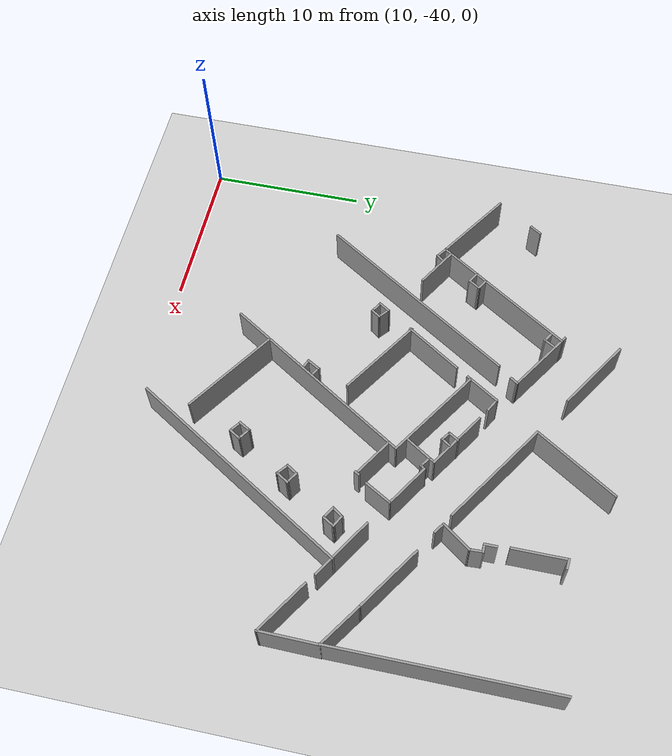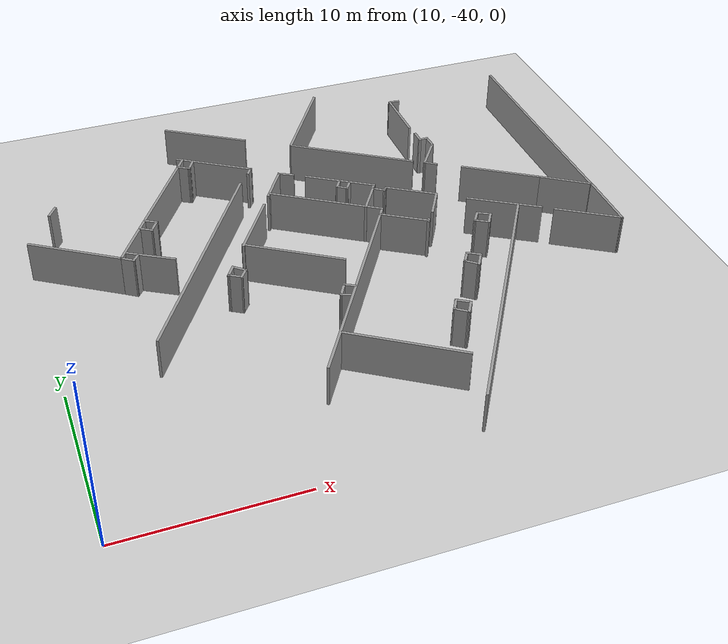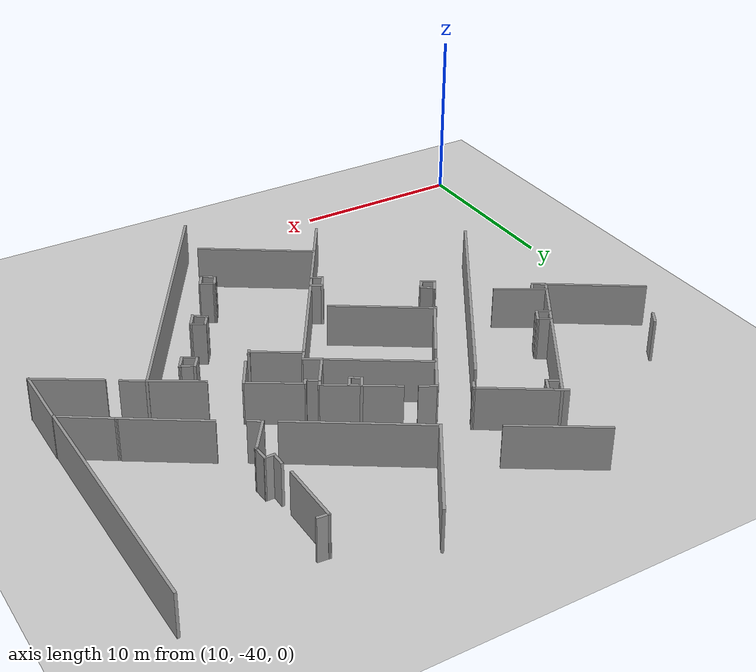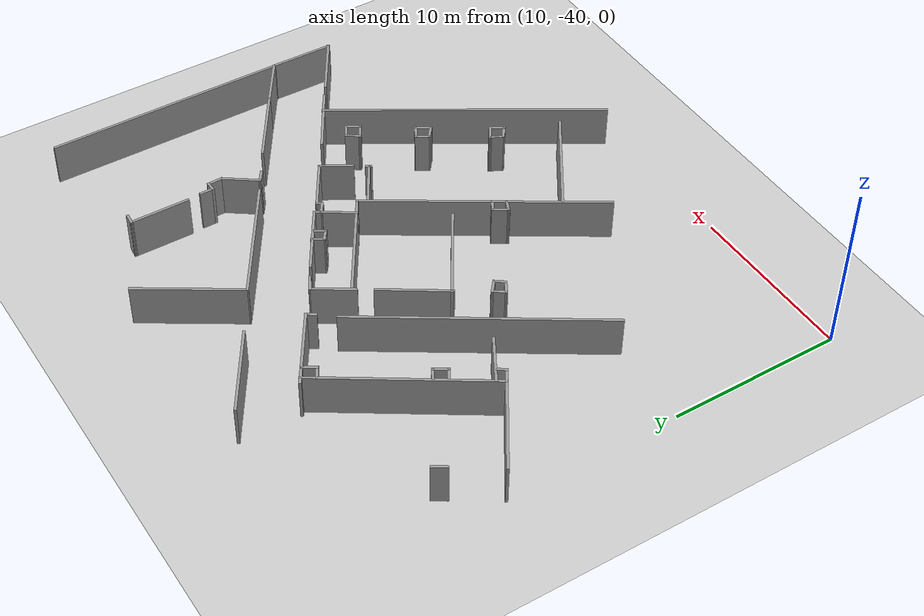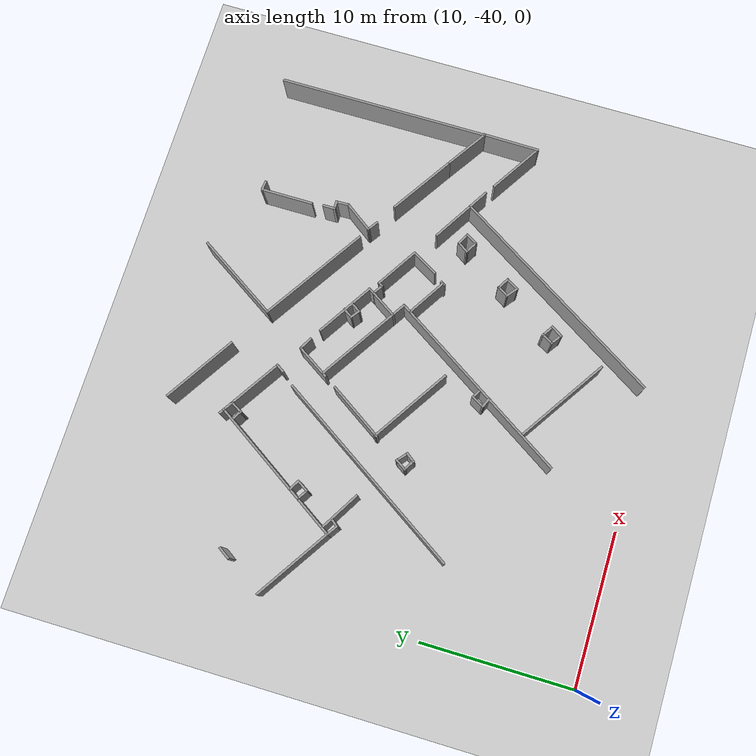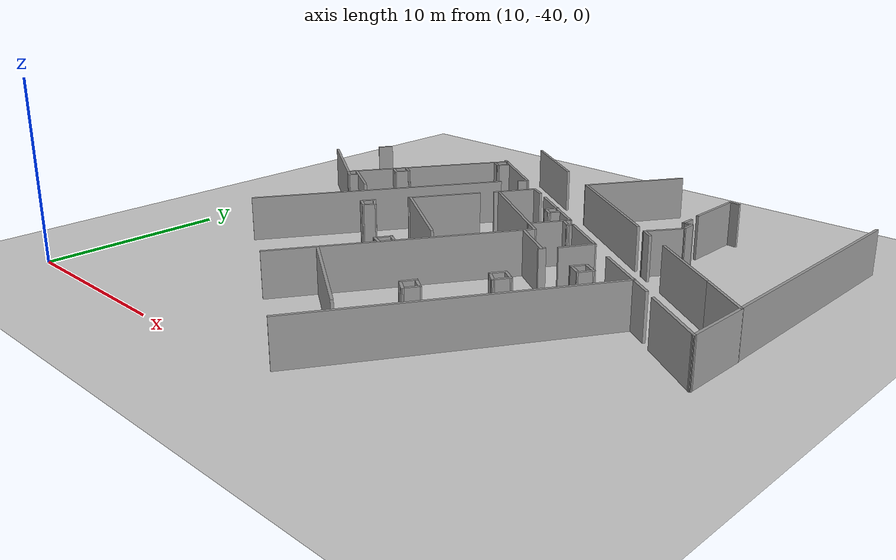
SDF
<sdf version="1.7">
 <world name="default">
  <model name="ground_plane">
   <static>1</static>
   <link name="link">
    <collision name="collision">
     <geometry><plane><normal>0 0 1</normal><size>100 100</size></plane></geometry>
     <surface><friction><ode><mu>100</mu><mu2>50</mu2></ode></friction></surface>
    </collision>
    <visual name="visual">
     <cast_shadows>0</cast_shadows>
     <geometry><plane><normal>0 0 1</normal><size>100 100</size></plane></geometry>
     <material>
      <script><uri>file://media/materials/scripts/gazebo.material</uri><name>Gazebo/Grey</name></script>
     </material>
    </visual>
   </link>
  </model>
  <model name="HopperFloorGround_Full">
   <pose>5.96828 -4.00427 0 0 -0 0</pose>
   <link name="Wall_1">
    <collision name="Wall_1_Collision">
     <geometry><box><size>16.3063 0.15 2.5</size></box></geometry>
     <pose>0 0 1.25 0 -0 0</pose>
    </collision>
    <visual name="Wall_1_Visual">
     <pose>0 0 1.25 0 -0 0</pose>
     <geometry><box><size>16.3063 0.15 2.5</size></box></geometry>
     <material>
      <script><uri>file://media/materials/scripts/gazebo.material</uri><name>Gazebo/Grey</name></script>
      <ambient>1 1 1 1</ambient>
     </material>
     <meta><layer>0</layer></meta>
    </visual>
    <pose>27.2284 -28.2428 0 0 -0 1.02013</pose>
   </link>
   <link name="Wall_10">
    <collision name="Wall_10_Collision">
     <geometry><box><size>0.518953 0.15 2.5</size></box></geometry>
     <pose>0 0 1.25 0 -0 0</pose>
    </collision>
    <visual name="Wall_10_Visual">
     <pose>0 0 1.25 0 -0 0</pose>
     <geometry><box><size>0.518953 0.15 2.5</size></box></geometry>
     <material>
      <script><uri>file://media/materials/scripts/gazebo.material</uri><name>Gazebo/Grey</name></script>
      <ambient>1 1 1 1</ambient>
     </material>
     <meta><layer>0</layer></meta>
    </visual>
    <pose>24.1583 -16.8971 0 0 -0 1.02225</pose>
   </link>
   <link name="Wall_12">
    <collision name="Wall_12_Collision">
     <geometry><box><size>4.26067 0.15 2.5</size></box></geometry>
     <pose>0 0 1.25 0 -0 0</pose>
    </collision>
    <visual name="Wall_12_Visual">
     <pose>0 0 1.25 0 -0 0</pose>
     <geometry><box><size>4.26067 0.15 2.5</size></box></geometry>
     <material>
      <script><uri>file://media/materials/scripts/gazebo.material</uri><name>Gazebo/Grey</name></script>
      <ambient>1 1 1 1</ambient>
     </material>
     <meta><layer>0</layer></meta>
    </visual>
    <pose>22.5135 -15.6473 0 0 -0 2.58124</pose>
   </link>
   <link name="Wall_14">
    <collision name="Wall_14_Collision">
     <geometry><box><size>1.0029 0.15 2.5</size></box></geometry>
     <pose>0 0 1.25 0 -0 0</pose>
    </collision>
    <visual name="Wall_14_Visual">
     <pose>0 0 1.25 0 -0 0</pose>
     <geometry><box><size>1.0029 0.15 2.5</size></box></geometry>
     <material>
      <script><uri>file://media/materials/scripts/gazebo.material</uri><name>Gazebo/Grey</name></script>
      <ambient>1 1 1 1</ambient>
     </material>
     <meta><layer>0</layer></meta>
    </visual>
    <pose>19.6794 -13.9165 0 0 -0 2.65043</pose>
   </link>
   <link name="Wall_15">
    <collision name="Wall_15_Collision">
     <geometry><box><size>2.53238 0.15 2.5</size></box></geometry>
     <pose>0 0 1.25 0 -0 0</pose>
    </collision>
    <visual name="Wall_15_Visual">
     <pose>0 0 1.25 0 -0 0</pose>
     <geometry><box><size>2.53238 0.15 2.5</size></box></geometry>
     <material>
      <script><uri>file://media/materials/scripts/gazebo.material</uri><name>Gazebo/Grey</name></script>
      <ambient>1 1 1 1</ambient>
     </material>
     <meta><layer>0</layer></meta>
    </visual>
    <pose>18.665 -14.7211 0 0 -0 -2.1364</pose>
   </link>
   <link name="Wall_17">
    <collision name="Wall_17_Collision">
     <geometry><box><size>4.18126 0.15 2.5</size></box></geometry>
     <pose>0 0 1.25 0 -0 0</pose>
    </collision>
    <visual name="Wall_17_Visual">
     <pose>0 0 1.25 0 -0 0</pose>
     <geometry><box><size>4.18126 0.15 2.5</size></box></geometry>
     <material>
      <script><uri>file://media/materials/scripts/gazebo.material</uri><name>Gazebo/Grey</name></script>
      <ambient>1 1 1 1</ambient>
     </material>
     <meta><layer>0</layer></meta>
    </visual>
    <pose>16.4 -18.2366 0 0 -0 -2.14917</pose>
   </link>
   <link name="Wall_18">
    <collision name="Wall_18_Collision">
     <geometry><box><size>5.9215 0.15 2.5</size></box></geometry>
     <pose>0 0 1.25 0 -0 0</pose>
    </collision>
    <visual name="Wall_18_Visual">
     <pose>0 0 1.25 0 -0 0</pose>
     <geometry><box><size>5.9215 0.15 2.5</size></box></geometry>
     <material>
      <script><uri>file://media/materials/scripts/gazebo.material</uri><name>Gazebo/Grey</name></script>
      <ambient>1 1 1 1</ambient>
     </material>
     <meta><layer>0</layer></meta>
    </visual>
    <pose>17.7293 -21.3954 0 0 -0 -0.568971</pose>
   </link>
   <link name="Wall_20">
    <collision name="Wall_20_Collision">
     <geometry><box><size>13.9697 0.15 2.5</size></box></geometry>
     <pose>0 0 1.25 0 -0 0</pose>
    </collision>
    <visual name="Wall_20_Visual">
     <pose>0 0 1.25 0 -0 0</pose>
     <geometry><box><size>13.9697 0.15 2.5</size></box></geometry>
     <material>
      <script><uri>file://media/materials/scripts/gazebo.material</uri><name>Gazebo/Grey</name></script>
      <ambient>1 1 1 1</ambient>
     </material>
     <meta><layer>0</layer></meta>
    </visual>
    <pose>20.145 -25.001 0 0 -0 1.0068</pose>
   </link>
   <link name="Wall_206">
    <collision name="Wall_206_Collision">
     <geometry><box><size>0.911033 0.15 2.5</size></box></geometry>
     <pose>0 0 1.25 0 -0 0</pose>
    </collision>
    <visual name="Wall_206_Visual">
     <pose>0 0 1.25 0 -0 0</pose>
     <geometry><box><size>0.911033 0.15 2.5</size></box></geometry>
     <material>
      <script><uri>file://media/materials/scripts/gazebo.material</uri><name>Gazebo/Grey</name></script>
      <ambient>1 1 1 1</ambient>
     </material>
     <meta><layer>0</layer></meta>
    </visual>
    <pose>5.80893 -13.1592 0 0 -0 -2.1588</pose>
   </link>
   <link name="Wall_21">
    <collision name="Wall_21_Collision">
     <geometry><box><size>6.82507 0.15 2.5</size></box></geometry>
     <pose>0 0 1.25 0 -0 0</pose>
    </collision>
    <visual name="Wall_21_Visual">
     <pose>0 0 1.25 0 -0 0</pose>
     <geometry><box><size>6.82507 0.15 2.5</size></box></geometry>
     <material>
      <script><uri>file://media/materials/scripts/gazebo.material</uri><name>Gazebo/Grey</name></script>
      <ambient>1 1 1 1</ambient>
     </material>
     <meta><layer>0</layer></meta>
    </visual>
    <pose>21.0245 -17.3672 0 0 -0 2.57405</pose>
   </link>
   <link name="Wall_213">
    <collision name="Wall_213_Collision">
     <geometry><box><size>5.6192 0.15 2.5</size></box></geometry>
     <pose>0 0 1.25 0 -0 0</pose>
    </collision>
    <visual name="Wall_213_Visual">
     <pose>0 0 1.25 0 -0 0</pose>
     <geometry><box><size>5.6192 0.15 2.5</size></box></geometry>
     <material>
      <script><uri>file://media/materials/scripts/gazebo.material</uri><name>Gazebo/Grey</name></script>
      <ambient>1 1 1 1</ambient>
     </material>
     <meta><layer>0</layer></meta>
    </visual>
    <pose>6.363 -17.3367 0 0 -0 -0.574623</pose>
   </link>
   <link name="Wall_214">
    <collision name="Wall_214_Collision">
     <geometry><box><size>10.3075 0.15 2.5</size></box></geometry>
     <pose>0 0 1.25 0 -0 0</pose>
    </collision>
    <visual name="Wall_214_Visual">
     <pose>0 0 1.25 0 -0 0</pose>
     <geometry><box><size>10.3075 0.15 2.5</size></box></geometry>
     <material>
      <script><uri>file://media/materials/scripts/gazebo.material</uri><name>Gazebo/Grey</name></script>
      <ambient>1 1 1 1</ambient>
     </material>
     <meta><layer>0</layer></meta>
    </visual>
    <pose>11.4287 -14.5663 0 0 -0 0.99384</pose>
   </link>
   <link name="Wall_217">
    <collision name="Wall_217_Collision">
     <geometry><box><size>4.78533 0.15 2.5</size></box></geometry>
     <pose>0 0 1.25 0 -0 0</pose>
    </collision>
    <visual name="Wall_217_Visual">
     <pose>0 0 1.25 0 -0 0</pose>
     <geometry><box><size>4.78533 0.15 2.5</size></box></geometry>
     <material>
      <script><uri>file://media/materials/scripts/gazebo.material</uri><name>Gazebo/Grey</name></script>
      <ambient>1 1 1 1</ambient>
     </material>
     <meta><layer>0</layer></meta>
    </visual>
    <pose>15.8877 -11.4003 0 0 -0 -0.569058</pose>
   </link>
   <link name="Wall_219">
    <collision name="Wall_219_Collision">
     <geometry><box><size>0.657355 0.15 2.5</size></box></geometry>
     <pose>0 0 1.25 0 -0 0</pose>
    </collision>
    <visual name="Wall_219_Visual">
     <pose>0 0 1.25 0 -0 0</pose>
     <geometry><box><size>0.657355 0.15 2.5</size></box></geometry>
     <material>
      <script><uri>file://media/materials/scripts/gazebo.material</uri><name>Gazebo/Grey</name></script>
      <ambient>1 1 1 1</ambient>
     </material>
     <meta><layer>0</layer></meta>
    </visual>
    <pose>17.6994 -12.8602 0 0 -0 -2.1588</pose>
   </link>
   <link name="Wall_221">
    <collision name="Wall_221_Collision">
     <geometry><box><size>0.922332 0.15 2.5</size></box></geometry>
     <pose>0 0 1.25 0 -0 0</pose>
    </collision>
    <visual name="Wall_221_Visual">
     <pose>0 0 1.25 0 -0 0</pose>
     <geometry><box><size>0.922332 0.15 2.5</size></box></geometry>
     <material>
      <script><uri>file://media/materials/scripts/gazebo.material</uri><name>Gazebo/Grey</name></script>
      <ambient>1 1 1 1</ambient>
     </material>
     <meta><layer>0</layer></meta>
    </visual>
    <pose>14.5509 -11.0309 0 0 -0 -2.09559</pose>
   </link>
   <link name="Wall_222">
    <collision name="Wall_222_Collision">
     <geometry><box><size>0.843834 0.15 2.5</size></box></geometry>
     <pose>0 0 1.25 0 -0 0</pose>
    </collision>
    <visual name="Wall_222_Visual">
     <pose>0 0 1.25 0 -0 0</pose>
     <geometry><box><size>0.843834 0.15 2.5</size></box></geometry>
     <material>
      <script><uri>file://media/materials/scripts/gazebo.material</uri><name>Gazebo/Grey</name></script>
      <ambient>1 1 1 1</ambient>
     </material>
     <meta><layer>0</layer></meta>
    </visual>
    <pose>14.0584 -11.1892 0 0 -0 2.60987</pose>
   </link>
   <link name="Wall_224">
    <collision name="Wall_224_Collision">
     <geometry><box><size>0.804599 0.15 2.5</size></box></geometry>
     <pose>0 0 1.25 0 -0 0</pose>
    </collision>
    <visual name="Wall_224_Visual">
     <pose>0 0 1.25 0 -0 0</pose>
     <geometry><box><size>0.804599 0.15 2.5</size></box></geometry>
     <material>
      <script><uri>file://media/materials/scripts/gazebo.material</uri><name>Gazebo/Grey</name></script>
      <ambient>1 1 1 1</ambient>
     </material>
     <meta><layer>0</layer></meta>
    </visual>
    <pose>10.9626 -15.9823 0 0 -0 -0.535811</pose>
   </link>
   <link name="Wall_225">
    <collision name="Wall_225_Collision">
     <geometry><box><size>0.940544 0.15 2.5</size></box></geometry>
     <pose>0 0 1.25 0 -0 0</pose>
    </collision>
    <visual name="Wall_225_Visual">
     <pose>0 0 1.25 0 -0 0</pose>
     <geometry><box><size>0.940544 0.15 2.5</size></box></geometry>
     <material>
      <script><uri>file://media/materials/scripts/gazebo.material</uri><name>Gazebo/Grey</name></script>
      <ambient>1 1 1 1</ambient>
     </material>
     <meta><layer>0</layer></meta>
    </visual>
    <pose>11.033 -16.4836 0 0 -0 -2.13411</pose>
   </link>
   <link name="Wall_226">
    <collision name="Wall_226_Collision">
     <geometry><box><size>0.828731 0.15 2.5</size></box></geometry>
     <pose>0 0 1.25 0 -0 0</pose>
    </collision>
    <visual name="Wall_226_Visual">
     <pose>0 0 1.25 0 -0 0</pose>
     <geometry><box><size>0.828731 0.15 2.5</size></box></geometry>
     <material>
      <script><uri>file://media/materials/scripts/gazebo.material</uri><name>Gazebo/Grey</name></script>
      <ambient>1 1 1 1</ambient>
     </material>
     <meta><layer>0</layer></meta>
    </visual>
    <pose>10.5317 -16.6419 0 0 -0 2.59673</pose>
   </link>
   <link name="Wall_228">
    <collision name="Wall_228_Collision">
     <geometry><box><size>0.896462 0.15 2.5</size></box></geometry>
     <pose>0 0 1.25 0 -0 0</pose>
    </collision>
    <visual name="Wall_228_Visual">
     <pose>0 0 1.25 0 -0 0</pose>
     <geometry><box><size>0.896462 0.15 2.5</size></box></geometry>
     <material>
      <script><uri>file://media/materials/scripts/gazebo.material</uri><name>Gazebo/Grey</name></script>
      <ambient>1 1 1 1</ambient>
     </material>
     <meta><layer>0</layer></meta>
    </visual>
    <pose>8.96623 -19.034 0 0 -0 -0.601074</pose>
   </link>
   <link name="Wall_229">
    <collision name="Wall_229_Collision">
     <geometry><box><size>0.614373 0.15 2.5</size></box></geometry>
     <pose>0 0 1.25 0 -0 0</pose>
    </collision>
    <visual name="Wall_229_Visual">
     <pose>0 0 1.25 0 -0 0</pose>
     <geometry><box><size>0.614373 0.15 2.5</size></box></geometry>
     <material>
      <script><uri>file://media/materials/scripts/gazebo.material</uri><name>Gazebo/Grey</name></script>
      <ambient>1 1 1 1</ambient>
     </material>
     <meta><layer>0</layer></meta>
    </visual>
    <pose>9.41476 -19.0604 0 0 -0 0.91972</pose>
   </link>
   <link name="Wall_23">
    <collision name="Wall_23_Collision">
     <geometry><box><size>0.813752 0.15 2.5</size></box></geometry>
     <pose>0 0 1.25 0 -0 0</pose>
    </collision>
    <visual name="Wall_23_Visual">
     <pose>0 0 1.25 0 -0 0</pose>
     <geometry><box><size>0.813752 0.15 2.5</size></box></geometry>
     <material>
      <script><uri>file://media/materials/scripts/gazebo.material</uri><name>Gazebo/Grey</name></script>
      <ambient>1 1 1 1</ambient>
     </material>
     <meta><layer>0</layer></meta>
    </visual>
    <pose>22.3261 -15.8897 0 0 -0 -2.1294</pose>
   </link>
   <link name="Wall_231">
    <collision name="Wall_231_Collision">
     <geometry><box><size>2.98866 0.15 2.5</size></box></geometry>
     <pose>0 0 1.25 0 -0 0</pose>
    </collision>
    <visual name="Wall_231_Visual">
     <pose>0 0 1.25 0 -0 0</pose>
     <geometry><box><size>2.98866 0.15 2.5</size></box></geometry>
     <material>
      <script><uri>file://media/materials/scripts/gazebo.material</uri><name>Gazebo/Grey</name></script>
      <ambient>1 1 1 1</ambient>
     </material>
     <meta><layer>0</layer></meta>
    </visual>
    <pose>10.1799 -19.122 0 0 -0 -0.532981</pose>
   </link>
   <link name="Wall_233">
    <collision name="Wall_233_Collision">
     <geometry><box><size>14.5973 0.15 2.5</size></box></geometry>
     <pose>0 0 1.25 0 -0 0</pose>
    </collision>
    <visual name="Wall_233_Visual">
     <pose>0 0 1.25 0 -0 0</pose>
     <geometry><box><size>14.5973 0.15 2.5</size></box></geometry>
     <material>
      <script><uri>file://media/materials/scripts/gazebo.material</uri><name>Gazebo/Grey</name></script>
      <ambient>1 1 1 1</ambient>
     </material>
     <meta><layer>0</layer></meta>
    </visual>
    <pose>12.9141 -20.0381 0 0 -0 0.999331</pose>
   </link>
   <link name="Wall_235">
    <collision name="Wall_235_Collision">
     <geometry><box><size>0.883834 0.15 2.5</size></box></geometry>
     <pose>0 0 1.25 0 -0 0</pose>
    </collision>
    <visual name="Wall_235_Visual">
     <pose>0 0 1.25 0 -0 0</pose>
     <geometry><box><size>0.883834 0.15 2.5</size></box></geometry>
     <material>
      <script><uri>file://media/materials/scripts/gazebo.material</uri><name>Gazebo/Grey</name></script>
      <ambient>1 1 1 1</ambient>
     </material>
     <meta><layer>0</layer></meta>
    </visual>
    <pose>14.0063 -21.8993 0 0 -0 -2.14717</pose>
   </link>
   <link name="Wall_236">
    <collision name="Wall_236_Collision">
     <geometry><box><size>0.867532 0.15 2.5</size></box></geometry>
     <pose>0 0 1.25 0 -0 0</pose>
    </collision>
    <visual name="Wall_236_Visual">
     <pose>0 0 1.25 0 -0 0</pose>
     <geometry><box><size>0.867532 0.15 2.5</size></box></geometry>
     <material>
      <script><uri>file://media/materials/scripts/gazebo.material</uri><name>Gazebo/Grey</name></script>
      <ambient>1 1 1 1</ambient>
     </material>
     <meta><layer>0</layer></meta>
    </visual>
    <pose>14.1139 -22.3915 0 0 -0 -0.54042</pose>
   </link>
   <link name="Wall_237">
    <collision name="Wall_237_Collision">
     <geometry><box><size>0.765279 0.15 2.5</size></box></geometry>
     <pose>0 0 1.25 0 -0 0</pose>
    </collision>
    <visual name="Wall_237_Visual">
     <pose>0 0 1.25 0 -0 0</pose>
     <geometry><box><size>0.765279 0.15 2.5</size></box></geometry>
     <material>
      <script><uri>file://media/materials/scripts/gazebo.material</uri><name>Gazebo/Grey</name></script>
      <ambient>1 1 1 1</ambient>
     </material>
     <meta><layer>0</layer></meta>
    </visual>
    <pose>14.6062 -22.33 0 0 -0 0.927295</pose>
   </link>
   <link name="Wall_238">
    <collision name="Wall_238_Collision">
     <geometry><box><size>0.91416 0.15 2.5</size></box></geometry>
     <pose>0 0 1.25 0 -0 0</pose>
    </collision>
    <visual name="Wall_238_Visual">
     <pose>0 0 1.25 0 -0 0</pose>
     <geometry><box><size>0.91416 0.15 2.5</size></box></geometry>
     <material>
      <script><uri>file://media/materials/scripts/gazebo.material</uri><name>Gazebo/Grey</name></script>
      <ambient>1 1 1 1</ambient>
     </material>
     <meta><layer>0</layer></meta>
    </visual>
    <pose>14.4985 -21.8377 0 0 -0 2.4417</pose>
   </link>
   <link name="Wall_24">
    <collision name="Wall_24_Collision">
     <geometry><box><size>0.755238 0.15 2.5</size></box></geometry>
     <pose>0 0 1.25 0 -0 0</pose>
    </collision>
    <visual name="Wall_24_Visual">
     <pose>0 0 1.25 0 -0 0</pose>
     <geometry><box><size>0.755238 0.15 2.5</size></box></geometry>
     <material>
      <script><uri>file://media/materials/scripts/gazebo.material</uri><name>Gazebo/Grey</name></script>
      <ambient>1 1 1 1</ambient>
     </material>
     <meta><layer>0</layer></meta>
    </visual>
    <pose>22.3964 -16.347 0 0 -0 -0.620249</pose>
   </link>
   <link name="Wall_240">
    <collision name="Wall_240_Collision">
     <geometry><box><size>0.75 0.15 2.5</size></box></geometry>
     <pose>0 0 1.25 0 -0 0</pose>
    </collision>
    <visual name="Wall_240_Visual">
     <pose>0 0 1.25 0 -0 0</pose>
     <geometry><box><size>0.75 0.15 2.5</size></box></geometry>
     <material>
      <script><uri>file://media/materials/scripts/gazebo.material</uri><name>Gazebo/Grey</name></script>
      <ambient>1 1 1 1</ambient>
     </material>
     <meta><layer>0</layer></meta>
    </visual>
    <pose>19.6378 -25.1641 0 0 -0 2.61799</pose>
   </link>
   <link name="Wall_241">
    <collision name="Wall_241_Collision">
     <geometry><box><size>1 0.15 2.5</size></box></geometry>
     <pose>0 0 1.25 0 -0 0</pose>
    </collision>
    <visual name="Wall_241_Visual">
     <pose>0 0 1.25 0 -0 0</pose>
     <geometry><box><size>1 0.15 2.5</size></box></geometry>
     <material>
      <script><uri>file://media/materials/scripts/gazebo.material</uri><name>Gazebo/Grey</name></script>
      <ambient>1 1 1 1</ambient>
     </material>
     <meta><layer>0</layer></meta>
    </visual>
    <pose>19.1654 -25.3821 0 0 -0 -2.0944</pose>
   </link>
   <link name="Wall_242">
    <collision name="Wall_242_Collision">
     <geometry><box><size>0.745491 0.15 2.5</size></box></geometry>
     <pose>0 0 1.25 0 -0 0</pose>
    </collision>
    <visual name="Wall_242_Visual">
     <pose>0 0 1.25 0 -0 0</pose>
     <geometry><box><size>0.745491 0.15 2.5</size></box></geometry>
     <material>
      <script><uri>file://media/materials/scripts/gazebo.material</uri><name>Gazebo/Grey</name></script>
      <ambient>1 1 1 1</ambient>
     </material>
     <meta><layer>0</layer></meta>
    </visual>
    <pose>19.2253 -25.8705 0 0 -0 -0.416081</pose>
   </link>
   <link name="Wall_244">
    <collision name="Wall_244_Collision">
     <geometry><box><size>0.907395 0.15 2.5</size></box></geometry>
     <pose>0 0 1.25 0 -0 0</pose>
    </collision>
    <visual name="Wall_244_Visual">
     <pose>0 0 1.25 0 -0 0</pose>
     <geometry><box><size>0.907395 0.15 2.5</size></box></geometry>
     <material>
      <script><uri>file://media/materials/scripts/gazebo.material</uri><name>Gazebo/Grey</name></script>
      <ambient>1 1 1 1</ambient>
     </material>
     <meta><layer>0</layer></meta>
    </visual>
    <pose>28.621 -21.6812 0 0 -0 -2.16621</pose>
   </link>
   <link name="Wall_245">
    <collision name="Wall_245_Collision">
     <geometry><box><size>0.947909 0.15 2.5</size></box></geometry>
     <pose>0 0 1.25 0 -0 0</pose>
    </collision>
    <visual name="Wall_245_Visual">
     <pose>0 0 1.25 0 -0 0</pose>
     <geometry><box><size>0.947909 0.15 2.5</size></box></geometry>
     <material>
      <script><uri>file://media/materials/scripts/gazebo.material</uri><name>Gazebo/Grey</name></script>
      <ambient>1 1 1 1</ambient>
     </material>
     <meta><layer>0</layer></meta>
    </visual>
    <pose>28.7525 -22.197 0 0 -0 -0.531724</pose>
   </link>
   <link name="Wall_246">
    <collision name="Wall_246_Collision">
     <geometry><box><size>0.930541 0.15 2.5</size></box></geometry>
     <pose>0 0 1.25 0 -0 0</pose>
    </collision>
    <visual name="Wall_246_Visual">
     <pose>0 0 1.25 0 -0 0</pose>
     <geometry><box><size>0.930541 0.15 2.5</size></box></geometry>
     <material>
      <script><uri>file://media/materials/scripts/gazebo.material</uri><name>Gazebo/Grey</name></script>
      <ambient>1 1 1 1</ambient>
     </material>
     <meta><layer>0</layer></meta>
    </visual>
    <pose>29.2986 -22.0656 0 0 -0 1.02593</pose>
   </link>
   <link name="Wall_247">
    <collision name="Wall_247_Collision">
     <geometry><box><size>0.882961 0.15 2.5</size></box></geometry>
     <pose>0 0 1.25 0 -0 0</pose>
    </collision>
    <visual name="Wall_247_Visual">
     <pose>0 0 1.25 0 -0 0</pose>
     <geometry><box><size>0.882961 0.15 2.5</size></box></geometry>
     <material>
      <script><uri>file://media/materials/scripts/gazebo.material</uri><name>Gazebo/Grey</name></script>
      <ambient>1 1 1 1</ambient>
     </material>
     <meta><layer>0</layer></meta>
    </visual>
    <pose>29.1773 -21.5599 0 0 -0 2.65326</pose>
   </link>
   <link name="Wall_249">
    <collision name="Wall_249_Collision">
     <geometry><box><size>0.8683 0.15 2.5</size></box></geometry>
     <pose>0 0 1.25 0 -0 0</pose>
    </collision>
    <visual name="Wall_249_Visual">
     <pose>0 0 1.25 0 -0 0</pose>
     <geometry><box><size>0.8683 0.15 2.5</size></box></geometry>
     <material>
      <script><uri>file://media/materials/scripts/gazebo.material</uri><name>Gazebo/Grey</name></script>
      <ambient>1 1 1 1</ambient>
     </material>
     <meta><layer>0</layer></meta>
    </visual>
    <pose>26.4971 -24.9682 0 0 -0 -2.13537</pose>
   </link>
   <link name="Wall_25">
    <collision name="Wall_25_Collision">
     <geometry><box><size>0.784194 0.15 2.5</size></box></geometry>
     <pose>0 0 1.25 0 -0 0</pose>
    </collision>
    <visual name="Wall_25_Visual">
     <pose>0 0 1.25 0 -0 0</pose>
     <geometry><box><size>0.784194 0.15 2.5</size></box></geometry>
     <material>
      <script><uri>file://media/materials/scripts/gazebo.material</uri><name>Gazebo/Grey</name></script>
      <ambient>1 1 1 1</ambient>
     </material>
     <meta><layer>0</layer></meta>
    </visual>
    <pose>22.8186 -16.2591 0 0 -0 0.982794</pose>
   </link>
   <link name="Wall_250">
    <collision name="Wall_250_Collision">
     <geometry><box><size>0.927126 0.15 2.5</size></box></geometry>
     <pose>0 0 1.25 0 -0 0</pose>
    </collision>
    <visual name="Wall_250_Visual">
     <pose>0 0 1.25 0 -0 0</pose>
     <geometry><box><size>0.927126 0.15 2.5</size></box></geometry>
     <material>
      <script><uri>file://media/materials/scripts/gazebo.material</uri><name>Gazebo/Grey</name></script>
      <ambient>1 1 1 1</ambient>
     </material>
     <meta><layer>0</layer></meta>
    </visual>
    <pose>26.6083 -25.5144 0 0 -0 -0.674741</pose>
   </link>
   <link name="Wall_251">
    <collision name="Wall_251_Collision">
     <geometry><box><size>1.00341 0.15 2.5</size></box></geometry>
     <pose>0 0 1.25 0 -0 0</pose>
    </collision>
    <visual name="Wall_251_Visual">
     <pose>0 0 1.25 0 -0 0</pose>
     <geometry><box><size>1.00341 0.15 2.5</size></box></geometry>
     <material>
      <script><uri>file://media/materials/scripts/gazebo.material</uri><name>Gazebo/Grey</name></script>
      <ambient>1 1 1 1</ambient>
     </material>
     <meta><layer>0</layer></meta>
    </visual>
    <pose>27.1343 -25.393 0 0 -0 1.02225</pose>
   </link>
   <link name="Wall_252">
    <collision name="Wall_252_Collision">
     <geometry><box><size>0.902789 0.15 2.5</size></box></geometry>
     <pose>0 0 1.25 0 -0 0</pose>
    </collision>
    <visual name="Wall_252_Visual">
     <pose>0 0 1.25 0 -0 0</pose>
     <geometry><box><size>0.902789 0.15 2.5</size></box></geometry>
     <material>
      <script><uri>file://media/materials/scripts/gazebo.material</uri><name>Gazebo/Grey</name></script>
      <ambient>1 1 1 1</ambient>
     </material>
     <meta><layer>0</layer></meta>
    </visual>
    <pose>27.0331 -24.8368 0 0 -0 2.60578</pose>
   </link>
   <link name="Wall_254">
    <collision name="Wall_254_Collision">
     <geometry><box><size>0.892666 0.15 2.5</size></box></geometry>
     <pose>0 0 1.25 0 -0 0</pose>
    </collision>
    <visual name="Wall_254_Visual">
     <pose>0 0 1.25 0 -0 0</pose>
     <geometry><box><size>0.892666 0.15 2.5</size></box></geometry>
     <material>
      <script><uri>file://media/materials/scripts/gazebo.material</uri><name>Gazebo/Grey</name></script>
      <ambient>1 1 1 1</ambient>
     </material>
     <meta><layer>0</layer></meta>
    </visual>
    <pose>24.2822 -28.4879 0 0 -0 -2.08319</pose>
   </link>
   <link name="Wall_255">
    <collision name="Wall_255_Collision">
     <geometry><box><size>0.918922 0.15 2.5</size></box></geometry>
     <pose>0 0 1.25 0 -0 0</pose>
    </collision>
    <visual name="Wall_255_Visual">
     <pose>0 0 1.25 0 -0 0</pose>
     <geometry><box><size>0.918922 0.15 2.5</size></box></geometry>
     <material>
      <script><uri>file://media/materials/scripts/gazebo.material</uri><name>Gazebo/Grey</name></script>
      <ambient>1 1 1 1</ambient>
     </material>
     <meta><layer>0</layer></meta>
    </visual>
    <pose>24.4136 -29.034 0 0 -0 -0.617191</pose>
   </link>
   <link name="Wall_256">
    <collision name="Wall_256_Collision">
     <geometry><box><size>0.930541 0.15 2.5</size></box></geometry>
     <pose>0 0 1.25 0 -0 0</pose>
    </collision>
    <visual name="Wall_256_Visual">
     <pose>0 0 1.25 0 -0 0</pose>
     <geometry><box><size>0.930541 0.15 2.5</size></box></geometry>
     <material>
      <script><uri>file://media/materials/scripts/gazebo.material</uri><name>Gazebo/Grey</name></script>
      <ambient>1 1 1 1</ambient>
     </material>
     <meta><layer>0</layer></meta>
    </visual>
    <pose>24.9294 -28.9228 0 0 -0 1.02593</pose>
   </link>
   <link name="Wall_257">
    <collision name="Wall_257_Collision">
     <geometry><box><size>0.941214 0.15 2.5</size></box></geometry>
     <pose>0 0 1.25 0 -0 0</pose>
    </collision>
    <visual name="Wall_257_Visual">
     <pose>0 0 1.25 0 -0 0</pose>
     <geometry><box><size>0.941214 0.15 2.5</size></box></geometry>
     <material>
      <script><uri>file://media/materials/scripts/gazebo.material</uri><name>Gazebo/Grey</name></script>
      <ambient>1 1 1 1</ambient>
     </material>
     <meta><layer>0</layer></meta>
    </visual>
    <pose>24.798 -28.3766 0 0 -0 2.57486</pose>
   </link>
   <link name="Wall_259">
    <collision name="Wall_259_Collision">
     <geometry><box><size>14 0.15 2.5</size></box></geometry>
     <pose>0 0 1.25 0 -0 0</pose>
    </collision>
    <visual name="Wall_259_Visual">
     <pose>0 0 1.25 0 -0 0</pose>
     <geometry><box><size>14 0.15 2.5</size></box></geometry>
     <material>
      <script><uri>file://media/materials/scripts/gazebo.material</uri><name>Gazebo/Grey</name></script>
      <ambient>1 1 1 1</ambient>
     </material>
     <meta><layer>0</layer></meta>
    </visual>
    <pose>36.4807 -13.966 0 0 -0 1.5708</pose>
   </link>
   <link name="Wall_261">
    <collision name="Wall_261_Collision">
     <geometry><box><size>2.28231 0.15 2.5</size></box></geometry>
     <pose>0 0 1.25 0 -0 0</pose>
    </collision>
    <visual name="Wall_261_Visual">
     <pose>0 0 1.25 0 -0 0</pose>
     <geometry><box><size>2.28231 0.15 2.5</size></box></geometry>
     <material>
      <script><uri>file://media/materials/scripts/gazebo.material</uri><name>Gazebo/Grey</name></script>
      <ambient>1 1 1 1</ambient>
     </material>
     <meta><layer>0</layer></meta>
    </visual>
    <pose>28.6808 -14.6108 0 0 -0 0.950645</pose>
   </link>
   <link name="Wall_262">
    <collision name="Wall_262_Collision">
     <geometry><box><size>0.945934 0.15 2.5</size></box></geometry>
     <pose>0 0 1.25 0 -0 0</pose>
    </collision>
    <visual name="Wall_262_Visual">
     <pose>0 0 1.25 0 -0 0</pose>
     <geometry><box><size>0.945934 0.15 2.5</size></box></geometry>
     <material>
      <script><uri>file://media/materials/scripts/gazebo.material</uri><name>Gazebo/Grey</name></script>
      <ambient>1 1 1 1</ambient>
     </material>
     <meta><layer>0</layer></meta>
    </visual>
    <pose>29.2851 -13.3455 0 0 -0 1.60924</pose>
   </link>
   <link name="Wall_263">
    <collision name="Wall_263_Collision">
     <geometry><box><size>0.624395 0.15 2.5</size></box></geometry>
     <pose>0 0 1.25 0 -0 0</pose>
    </collision>
    <visual name="Wall_263_Visual">
     <pose>0 0 1.25 0 -0 0</pose>
     <geometry><box><size>0.624395 0.15 2.5</size></box></geometry>
     <material>
      <script><uri>file://media/materials/scripts/gazebo.material</uri><name>Gazebo/Grey</name></script>
      <ambient>1 1 1 1</ambient>
     </material>
     <meta><layer>0</layer></meta>
    </visual>
    <pose>29.0327 -12.9478 0 0 -0 3.14159</pose>
   </link>
   <link name="Wall_264">
    <collision name="Wall_264_Collision">
     <geometry><box><size>0.86887 0.15 2.5</size></box></geometry>
     <pose>0 0 1.25 0 -0 0</pose>
    </collision>
    <visual name="Wall_264_Visual">
     <pose>0 0 1.25 0 -0 0</pose>
     <geometry><box><size>0.86887 0.15 2.5</size></box></geometry>
     <material>
      <script><uri>file://media/materials/scripts/gazebo.material</uri><name>Gazebo/Grey</name></script>
      <ambient>1 1 1 1</ambient>
     </material>
     <meta><layer>0</layer></meta>
    </visual>
    <pose>28.7956 -12.5884 0 0 -0 1.5708</pose>
   </link>
   <link name="Wall_27">
    <collision name="Wall_27_Collision">
     <geometry><box><size>1.98379 0.15 2.5</size></box></geometry>
     <pose>0 0 1.25 0 -0 0</pose>
    </collision>
    <visual name="Wall_27_Visual">
     <pose>0 0 1.25 0 -0 0</pose>
     <geometry><box><size>1.98379 0.15 2.5</size></box></geometry>
     <material>
      <script><uri>file://media/materials/scripts/gazebo.material</uri><name>Gazebo/Grey</name></script>
      <ambient>1 1 1 1</ambient>
     </material>
     <meta><layer>0</layer></meta>
    </visual>
    <pose>23.5307 -17.8849 0 0 -0 0.99602</pose>
   </link>
   <link name="Wall_29">
    <collision name="Wall_29_Collision">
     <geometry><box><size>2.90684 0.15 2.5</size></box></geometry>
     <pose>0 0 1.25 0 -0 0</pose>
    </collision>
    <visual name="Wall_29_Visual">
     <pose>0 0 1.25 0 -0 0</pose>
     <geometry><box><size>2.90684 0.15 2.5</size></box></geometry>
     <material>
      <script><uri>file://media/materials/scripts/gazebo.material</uri><name>Gazebo/Grey</name></script>
      <ambient>1 1 1 1</ambient>
     </material>
     <meta><layer>0</layer></meta>
    </visual>
    <pose>24.7287 -20.3947 0 0 -0 -0.554564</pose>
   </link>
   <link name="Wall_33">
    <collision name="Wall_33_Collision">
     <geometry><box><size>3.943 0.15 2.5</size></box></geometry>
     <pose>0 0 1.25 0 -0 0</pose>
    </collision>
    <visual name="Wall_33_Visual">
     <pose>0 0 1.25 0 -0 0</pose>
     <geometry><box><size>3.943 0.15 2.5</size></box></geometry>
     <material>
      <script><uri>file://media/materials/scripts/gazebo.material</uri><name>Gazebo/Grey</name></script>
      <ambient>1 1 1 1</ambient>
     </material>
     <meta><layer>0</layer></meta>
    </visual>
    <pose>34.85 -23.5163 0 0 -0 -0.559246</pose>
   </link>
   <link name="Wall_34">
    <collision name="Wall_34_Collision">
     <geometry><box><size>3.75867 0.15 2.5</size></box></geometry>
     <pose>0 0 1.25 0 -0 0</pose>
    </collision>
    <visual name="Wall_34_Visual">
     <pose>0 0 1.25 0 -0 0</pose>
     <geometry><box><size>3.75867 0.15 2.5</size></box></geometry>
     <material>
      <script><uri>file://media/materials/scripts/gazebo.material</uri><name>Gazebo/Grey</name></script>
      <ambient>1 1 1 1</ambient>
     </material>
     <meta><layer>0</layer></meta>
    </visual>
    <pose>36.4807 -22.7183 0 0 -0 1.55798</pose>
   </link>
   <link name="Wall_35">
    <collision name="Wall_35_Collision">
     <geometry><box><size>3.17162 0.15 2.5</size></box></geometry>
     <pose>0 0 1.25 0 -0 0</pose>
    </collision>
    <visual name="Wall_35_Visual">
     <pose>0 0 1.25 0 -0 0</pose>
     <geometry><box><size>3.17162 0.15 2.5</size></box></geometry>
     <material>
      <script><uri>file://media/materials/scripts/gazebo.material</uri><name>Gazebo/Grey</name></script>
      <ambient>1 1 1 1</ambient>
     </material>
     <meta><layer>0</layer></meta>
    </visual>
    <pose>35.2201 -20.0583 0 0 -0 2.55784</pose>
   </link>
   <link name="Wall_37">
    <collision name="Wall_37_Collision">
     <geometry><box><size>4.83359 0.15 2.5</size></box></geometry>
     <pose>0 0 1.25 0 -0 0</pose>
    </collision>
    <visual name="Wall_37_Visual">
     <pose>0 0 1.25 0 -0 0</pose>
     <geometry><box><size>4.83359 0.15 2.5</size></box></geometry>
     <material>
      <script><uri>file://media/materials/scripts/gazebo.material</uri><name>Gazebo/Grey</name></script>
      <ambient>1 1 1 1</ambient>
     </material>
     <meta><layer>0</layer></meta>
    </visual>
    <pose>31.9934 -17.9534 0 0 -0 2.56729</pose>
   </link>
   <link name="Wall_39">
    <collision name="Wall_39_Collision">
     <geometry><box><size>0.849295 0.15 2.5</size></box></geometry>
     <pose>0 0 1.25 0 -0 0</pose>
    </collision>
    <visual name="Wall_39_Visual">
     <pose>0 0 1.25 0 -0 0</pose>
     <geometry><box><size>0.849295 0.15 2.5</size></box></geometry>
     <material>
      <script><uri>file://media/materials/scripts/gazebo.material</uri><name>Gazebo/Grey</name></script>
      <ambient>1 1 1 1</ambient>
     </material>
     <meta><layer>0</layer></meta>
    </visual>
    <pose>28.3503 -15.675 0 0 -0 2.54442</pose>
   </link>
   <link name="Wall_393">
    <collision name="Wall_393_Collision">
     <geometry><box><size>5.27998 0.15 2.5</size></box></geometry>
     <pose>0 0 1.25 0 -0 0</pose>
    </collision>
    <visual name="Wall_393_Visual">
     <pose>0 0 1.25 0 -0 0</pose>
     <geometry><box><size>5.27998 0.15 2.5</size></box></geometry>
     <material>
      <script><uri>file://media/materials/scripts/gazebo.material</uri><name>Gazebo/Grey</name></script>
      <ambient>1 1 1 1</ambient>
     </material>
     <meta><layer>0</layer></meta>
    </visual>
    <pose>16.2153 -8.01839 0 0 -0 2.57669</pose>
   </link>
   <link name="Wall_4">
    <collision name="Wall_4_Collision">
     <geometry><box><size>0.39298 0.15 2.5</size></box></geometry>
     <pose>0 0 1.25 0 -0 0</pose>
    </collision>
    <visual name="Wall_4_Visual">
     <pose>0 0 1.25 0 -0 0</pose>
     <geometry><box><size>0.39298 0.15 2.5</size></box></geometry>
     <material>
      <script><uri>file://media/materials/scripts/gazebo.material</uri><name>Gazebo/Grey</name></script>
      <ambient>1 1 1 1</ambient>
     </material>
     <meta><layer>0</layer></meta>
    </visual>
    <pose>25.9248 -21.1122 0 0 -0 1.04272</pose>
   </link>
   <link name="Wall_41">
    <collision name="Wall_41_Collision">
     <geometry><box><size>7.79798 0.15 2.5</size></box></geometry>
     <pose>0 0 1.25 0 -0 0</pose>
    </collision>
    <visual name="Wall_41_Visual">
     <pose>0 0 1.25 0 -0 0</pose>
     <geometry><box><size>7.79798 0.15 2.5</size></box></geometry>
     <material>
      <script><uri>file://media/materials/scripts/gazebo.material</uri><name>Gazebo/Grey</name></script>
      <ambient>1 1 1 1</ambient>
     </material>
     <meta><layer>0</layer></meta>
    </visual>
    <pose>24.1752 -13.015 0 0 -0 2.56953</pose>
   </link>
   <link name="Wall_43">
    <collision name="Wall_43_Collision">
     <geometry><box><size>4.41014 0.15 2.5</size></box></geometry>
     <pose>0 0 1.25 0 -0 0</pose>
    </collision>
    <visual name="Wall_43_Visual">
     <pose>0 0 1.25 0 -0 0</pose>
     <geometry><box><size>4.41014 0.15 2.5</size></box></geometry>
     <material>
      <script><uri>file://media/materials/scripts/gazebo.material</uri><name>Gazebo/Grey</name></script>
      <ambient>1 1 1 1</ambient>
     </material>
     <meta><layer>0</layer></meta>
    </visual>
    <pose>30.7614 -20.9565 0 0 -0 -0.546087</pose>
   </link>
   <link name="Wall_534">
    <collision name="Wall_534_Collision">
     <geometry><box><size>6.20381 0.15 2.5</size></box></geometry>
     <pose>0 0 1.25 0 -0 0</pose>
    </collision>
    <visual name="Wall_534_Visual">
     <pose>0 0 1.25 0 -0 0</pose>
     <geometry><box><size>6.20381 0.15 2.5</size></box></geometry>
     <material>
      <script><uri>file://media/materials/scripts/gazebo.material</uri><name>Gazebo/Grey</name></script>
      <ambient>1 1 1 1</ambient>
     </material>
     <meta><layer>0</layer></meta>
    </visual>
    <pose>22.5855 -8.39139 0 0 -0 1.00391</pose>
   </link>
   <link name="Wall_599">
    <collision name="Wall_599_Collision">
     <geometry><box><size>6.74972 0.15 2.5</size></box></geometry>
     <pose>0 0 1.25 0 -0 0</pose>
    </collision>
    <visual name="Wall_599_Visual">
     <pose>0 0 1.25 0 -0 0</pose>
     <geometry><box><size>6.74972 0.15 2.5</size></box></geometry>
     <material>
      <script><uri>file://media/materials/scripts/gazebo.material</uri><name>Gazebo/Grey</name></script>
      <ambient>1 1 1 1</ambient>
     </material>
     <meta><layer>0</layer></meta>
    </visual>
    <pose>20.7217 -30.4114 0 0 -0 2.56159</pose>
   </link>
   <link name="Wall_6">
    <collision name="Wall_6_Collision">
     <geometry><box><size>2 0.15 2.5</size></box></geometry>
     <pose>0 0 1.25 0 -0 0</pose>
    </collision>
    <visual name="Wall_6_Visual">
     <pose>0 0 1.25 0 -0 0</pose>
     <geometry><box><size>2 0.15 2.5</size></box></geometry>
     <material>
      <script><uri>file://media/materials/scripts/gazebo.material</uri><name>Gazebo/Grey</name></script>
      <ambient>1 1 1 1</ambient>
     </material>
     <meta><layer>0</layer></meta>
    </visual>
    <pose>26.9208 -19.6115 0 0 -0 1.0472</pose>
   </link>
   <link name="Wall_602">
    <collision name="Wall_602_Collision">
     <geometry><box><size>0.699347 0.15 2.5</size></box></geometry>
     <pose>0 0 1.25 0 -0 0</pose>
    </collision>
    <visual name="Wall_602_Visual">
     <pose>0 0 1.25 0 -0 0</pose>
     <geometry><box><size>0.699347 0.15 2.5</size></box></geometry>
     <material>
      <script><uri>file://media/materials/scripts/gazebo.material</uri><name>Gazebo/Grey</name></script>
      <ambient>1 1 1 1</ambient>
     </material>
     <meta><layer>0</layer></meta>
    </visual>
    <pose>28.9904 -8.06806 0 0 -0 3.05485</pose>
   </link>
   <link name="Wall_603">
    <collision name="Wall_603_Collision">
     <geometry><box><size>3.50516 0.15 2.5</size></box></geometry>
     <pose>0 0 1.25 0 -0 0</pose>
    </collision>
    <visual name="Wall_603_Visual">
     <pose>0 0 1.25 0 -0 0</pose>
     <geometry><box><size>3.50516 0.15 2.5</size></box></geometry>
     <material>
      <script><uri>file://media/materials/scripts/gazebo.material</uri><name>Gazebo/Grey</name></script>
      <ambient>1 1 1 1</ambient>
     </material>
     <meta><layer>0</layer></meta>
    </visual>
    <pose>28.7168 -9.7218 0 0 -0 -1.5708</pose>
   </link>
   <link name="Wall_7">
    <collision name="Wall_7_Collision">
     <geometry><box><size>3.17579 0.15 2.5</size></box></geometry>
     <pose>0 0 1.25 0 -0 0</pose>
    </collision>
    <visual name="Wall_7_Visual">
     <pose>0 0 1.25 0 -0 0</pose>
     <geometry><box><size>3.17579 0.15 2.5</size></box></geometry>
     <material>
      <script><uri>file://media/materials/scripts/gazebo.material</uri><name>Gazebo/Grey</name></script>
      <ambient>1 1 1 1</ambient>
     </material>
     <meta><layer>0</layer></meta>
    </visual>
    <pose>26.0988 -18.0112 0 0 -0 2.58499</pose>
   </link>
   <link name="Wall_8">
    <collision name="Wall_8_Collision">
     <geometry><box><size>0.441093 0.15 2.5</size></box></geometry>
     <pose>0 0 1.25 0 -0 0</pose>
    </collision>
    <visual name="Wall_8_Visual">
     <pose>0 0 1.25 0 -0 0</pose>
     <geometry><box><size>0.441093 0.15 2.5</size></box></geometry>
     <material>
      <script><uri>file://media/materials/scripts/gazebo.material</uri><name>Gazebo/Grey</name></script>
      <ambient>1 1 1 1</ambient>
     </material>
     <meta><layer>0</layer></meta>
    </visual>
    <pose>24.7355 -17.3343 0 0 -0 -2.14213</pose>
   </link>
   <link name="Wall_9">
    <collision name="Wall_9_Collision">
     <geometry><box><size>0.867945 0.15 2.5</size></box></geometry>
     <pose>0 0 1.25 0 -0 0</pose>
    </collision>
    <visual name="Wall_9_Visual">
     <pose>0 0 1.25 0 -0 0</pose>
     <geometry><box><size>0.867945 0.15 2.5</size></box></geometry>
     <material>
      <script><uri>file://media/materials/scripts/gazebo.material</uri><name>Gazebo/Grey</name></script>
      <ambient>1 1 1 1</ambient>
     </material>
     <meta><layer>0</layer></meta>
    </visual>
    <pose>24.3595 -17.2556 0 0 -0 2.54683</pose>
   </link>
   <static>1</static>
  </model>
 </world>
</sdf>
